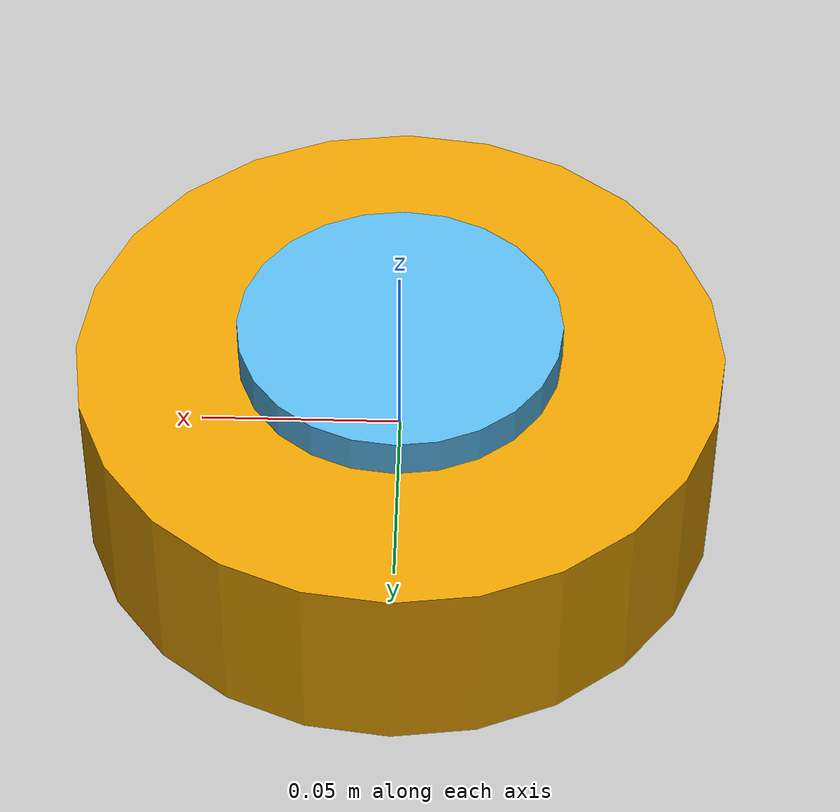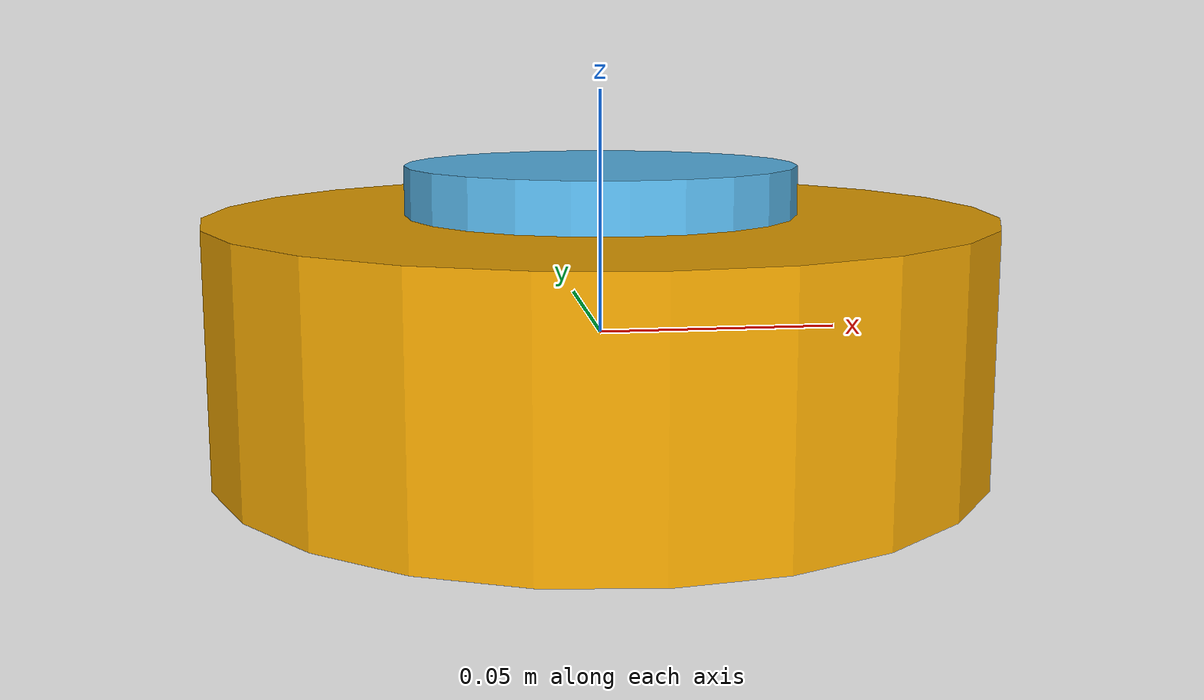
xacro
<?xml version="1.0"?>
<robot name="ak80_8" xmlns:xacro="http://www.ros.org/wiki/xacro">
  <!-- Include ros2 control tags -->
  <xacro:include filename="$(find levion_arm_ros2_control)/ros2_control/ak80_8.ros2_control.xacro"/>

  <!-- Main URDF -->
  <link name="ak80_8_bottom">
    <visual>
      <origin xyz="0 0 0" rpy="0 0 0"/>
      <geometry>
        <cylinder radius=".08" length="0.05"/>
      </geometry>
    </visual>
    <collision>
      <origin xyz="0 0 0" rpy="0 0 0"/>
      <geometry>
        <cylinder radius=".08" length="0.05"/>
      </geometry>
    </collision>
    <inertial>
      <origin xyz="0 0 0" rpy="0 0 0"/>
      <mass value="0.1"/>
      <inertia ixx="0.0001" ixy="0.0" ixz="0.0" iyy="0.0001" iyz="0.0" izz="0.0001"/>
    </inertial>
  </link>

  <link name="ak80_8_top">
    <visual>
      <origin xyz="0 0 0" rpy="0 0 0"/>
      <geometry>
        <cylinder radius=".04" length="0.01"/>
      </geometry>
    </visual>
    <collision>
      <origin xyz="0 0 0" rpy="0 0 0"/>
      <geometry>
        <cylinder radius=".04" length="0.01"/>
      </geometry>
    </collision>
    <inertial>
      <origin xyz="0 0 0" rpy="0 0 0"/>
      <mass value="0.1"/>
      <inertia ixx="0.0001" ixy="0.0" ixz="0.0" iyy="0.0001" iyz="0.0" izz="0.0001"/>
    </inertial>
  </link>

  <joint name="ak80_8_joint" type="revolute">
    <origin xyz="0 0 0.03" rpy="0 0 0"/>
    <parent link="ak80_8_bottom"/>
    <child link="ak80_8_top"/>
    <axis xyz="0 0 1"/>
    <limit lower="-3.14159265359" upper="3.14159265359" effort="10" velocity="10"/>
  </joint>

</robot>
